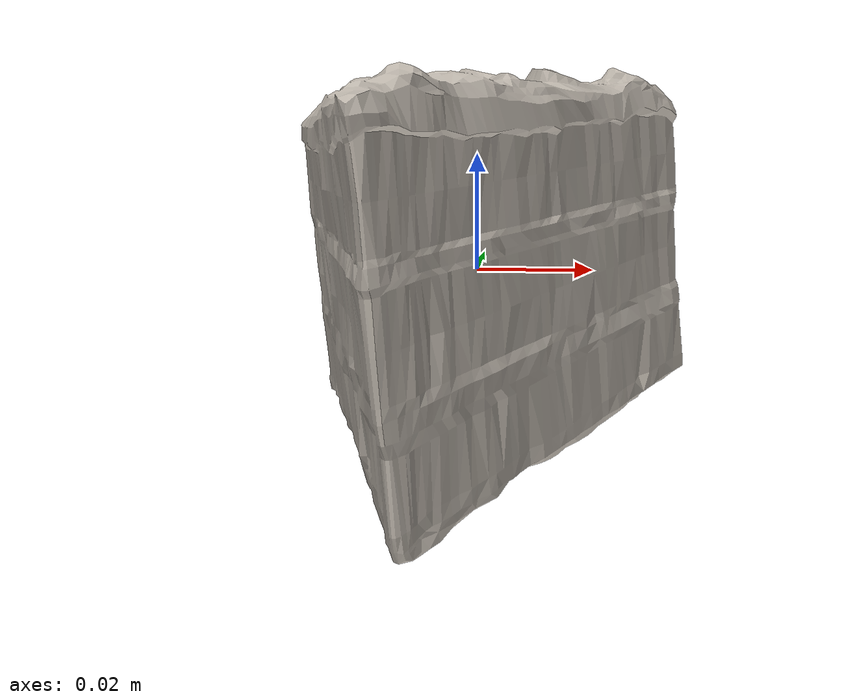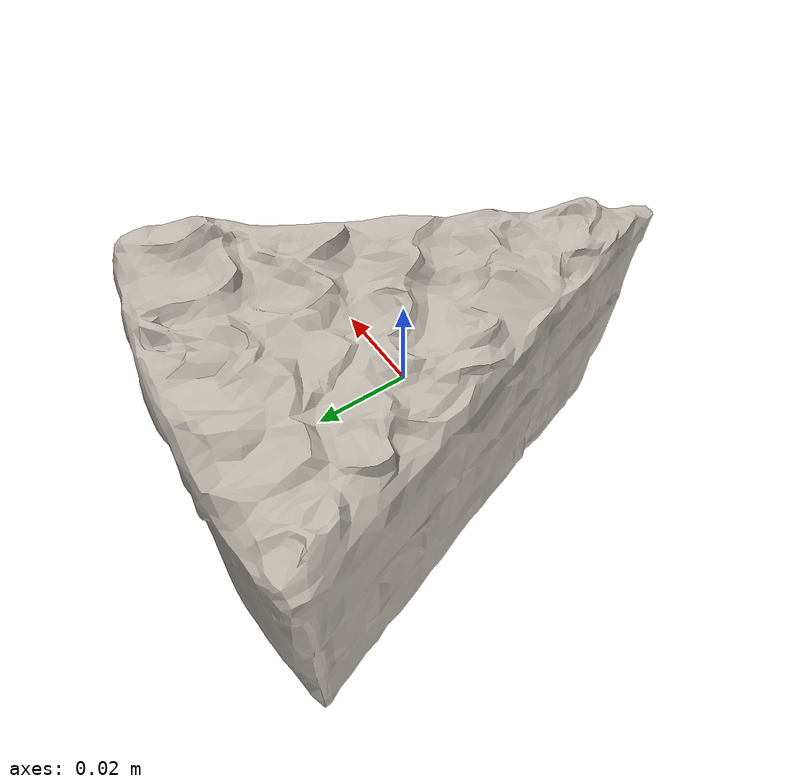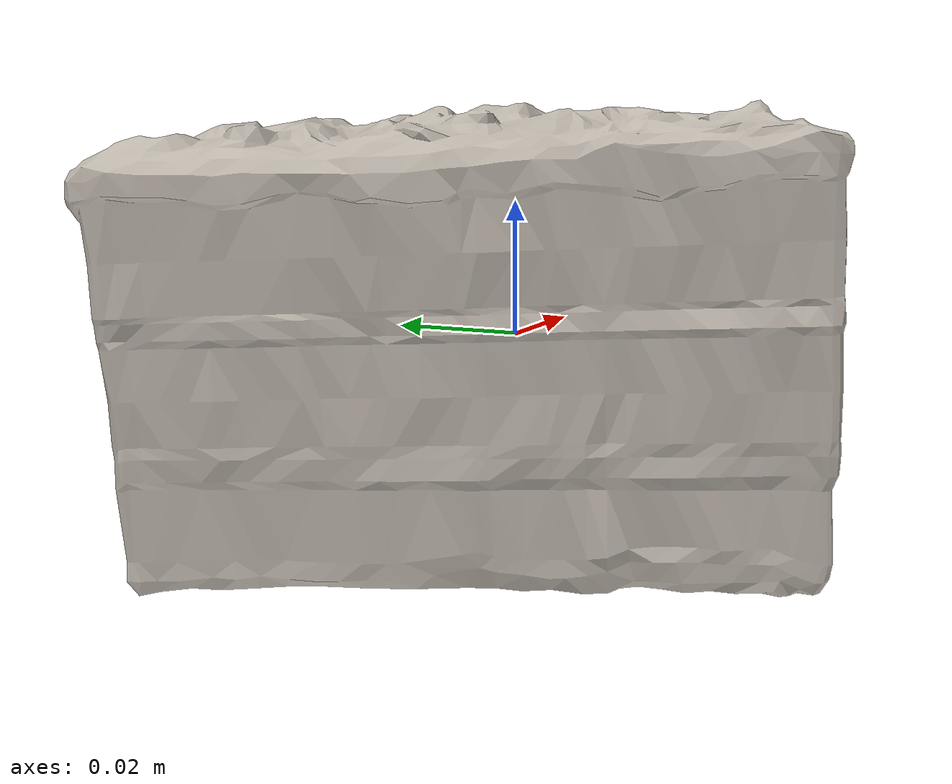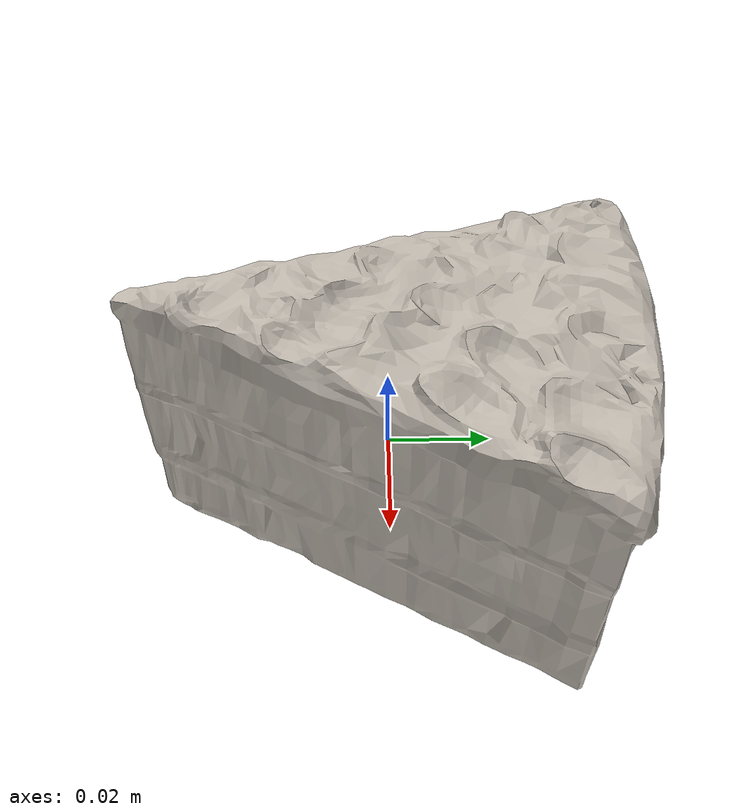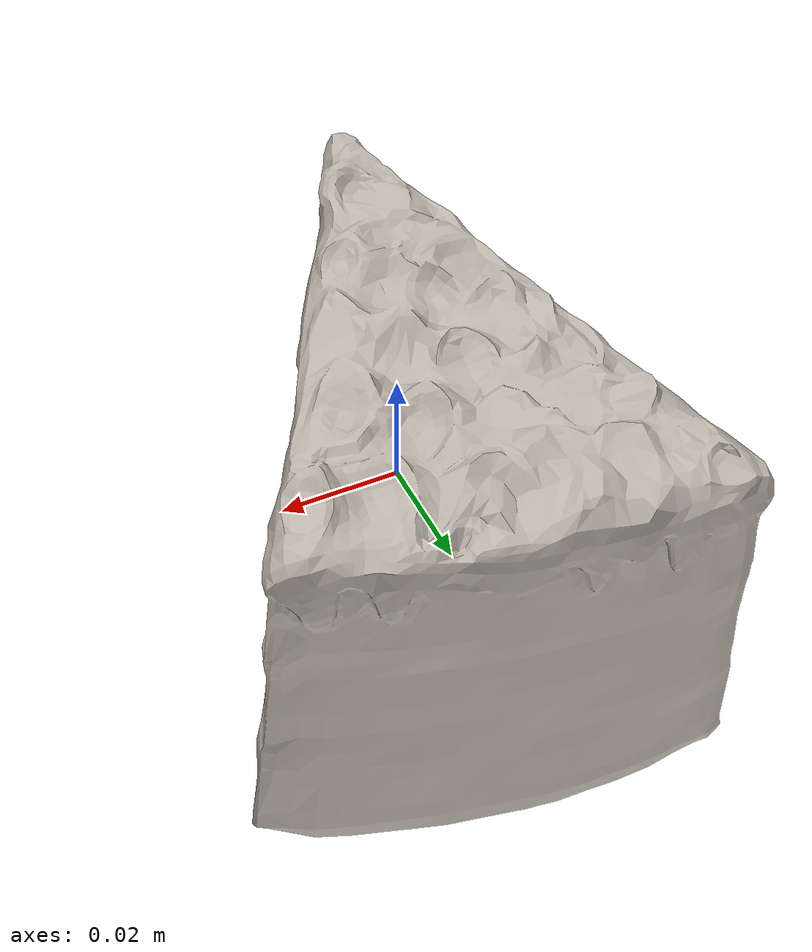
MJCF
<mujoco model="cake_30">
  <asset>
    <mesh file="visual/model_normalized_0.obj" name="model_normalized_0_vis" scale="0.09999999999999994 0.09999999999999994 0.09999999999999994" refquat="0.9999999999999999 0.0 0.0 0.0"/>
    <mesh file="collision/model_normalized_collision_22.obj" name="model_normalized_collision_22._coll" scale="0.09999999999999994 0.09999999999999994 0.09999999999999994" refquat="0.9999999999999999 0.0 0.0 0.0"/>
    <mesh file="collision/model_normalized_collision_23.obj" name="model_normalized_collision_23._coll" scale="0.09999999999999994 0.09999999999999994 0.09999999999999994" refquat="0.9999999999999999 0.0 0.0 0.0"/>
    <mesh file="collision/model_normalized_collision_21.obj" name="model_normalized_collision_21._coll" scale="0.09999999999999994 0.09999999999999994 0.09999999999999994" refquat="0.9999999999999999 0.0 0.0 0.0"/>
    <mesh file="collision/model_normalized_collision_20.obj" name="model_normalized_collision_20._coll" scale="0.09999999999999994 0.09999999999999994 0.09999999999999994" refquat="0.9999999999999999 0.0 0.0 0.0"/>
    <mesh file="collision/model_normalized_collision_24.obj" name="model_normalized_collision_24._coll" scale="0.09999999999999994 0.09999999999999994 0.09999999999999994" refquat="0.9999999999999999 0.0 0.0 0.0"/>
    <mesh file="collision/model_normalized_collision_30.obj" name="model_normalized_collision_30._coll" scale="0.09999999999999994 0.09999999999999994 0.09999999999999994" refquat="0.9999999999999999 0.0 0.0 0.0"/>
    <mesh file="collision/model_normalized_collision_18.obj" name="model_normalized_collision_18._coll" scale="0.09999999999999994 0.09999999999999994 0.09999999999999994" refquat="0.9999999999999999 0.0 0.0 0.0"/>
    <mesh file="collision/model_normalized_collision_19.obj" name="model_normalized_collision_19._coll" scale="0.09999999999999994 0.09999999999999994 0.09999999999999994" refquat="0.9999999999999999 0.0 0.0 0.0"/>
    <mesh file="collision/model_normalized_collision_31.obj" name="model_normalized_collision_31._coll" scale="0.09999999999999994 0.09999999999999994 0.09999999999999994" refquat="0.9999999999999999 0.0 0.0 0.0"/>
    <mesh file="collision/model_normalized_collision_25.obj" name="model_normalized_collision_25._coll" scale="0.09999999999999994 0.09999999999999994 0.09999999999999994" refquat="0.9999999999999999 0.0 0.0 0.0"/>
    <mesh file="collision/model_normalized_collision_27.obj" name="model_normalized_collision_27._coll" scale="0.09999999999999994 0.09999999999999994 0.09999999999999994" refquat="0.9999999999999999 0.0 0.0 0.0"/>
    <mesh file="collision/model_normalized_collision_26.obj" name="model_normalized_collision_26._coll" scale="0.09999999999999994 0.09999999999999994 0.09999999999999994" refquat="0.9999999999999999 0.0 0.0 0.0"/>
    <mesh file="collision/model_normalized_collision_9.obj" name="model_normalized_collision_9._coll" scale="0.09999999999999994 0.09999999999999994 0.09999999999999994" refquat="0.9999999999999999 0.0 0.0 0.0"/>
    <mesh file="collision/model_normalized_collision_8.obj" name="model_normalized_collision_8._coll" scale="0.09999999999999994 0.09999999999999994 0.09999999999999994" refquat="0.9999999999999999 0.0 0.0 0.0"/>
    <mesh file="collision/model_normalized_collision_6.obj" name="model_normalized_collision_6._coll" scale="0.09999999999999994 0.09999999999999994 0.09999999999999994" refquat="0.9999999999999999 0.0 0.0 0.0"/>
    <mesh file="collision/model_normalized_collision_7.obj" name="model_normalized_collision_7._coll" scale="0.09999999999999994 0.09999999999999994 0.09999999999999994" refquat="0.9999999999999999 0.0 0.0 0.0"/>
    <mesh file="collision/model_normalized_collision_5.obj" name="model_normalized_collision_5._coll" scale="0.09999999999999994 0.09999999999999994 0.09999999999999994" refquat="0.9999999999999999 0.0 0.0 0.0"/>
    <mesh file="collision/model_normalized_collision_4.obj" name="model_normalized_collision_4._coll" scale="0.09999999999999994 0.09999999999999994 0.09999999999999994" refquat="0.9999999999999999 0.0 0.0 0.0"/>
    <mesh file="collision/model_normalized_collision_0.obj" name="model_normalized_collision_0._coll" scale="0.09999999999999994 0.09999999999999994 0.09999999999999994" refquat="0.9999999999999999 0.0 0.0 0.0"/>
    <mesh file="collision/model_normalized_collision_1.obj" name="model_normalized_collision_1._coll" scale="0.09999999999999994 0.09999999999999994 0.09999999999999994" refquat="0.9999999999999999 0.0 0.0 0.0"/>
    <mesh file="collision/model_normalized_collision_3.obj" name="model_normalized_collision_3._coll" scale="0.09999999999999994 0.09999999999999994 0.09999999999999994" refquat="0.9999999999999999 0.0 0.0 0.0"/>
    <mesh file="collision/model_normalized_collision_2.obj" name="model_normalized_collision_2._coll" scale="0.09999999999999994 0.09999999999999994 0.09999999999999994" refquat="0.9999999999999999 0.0 0.0 0.0"/>
    <mesh file="collision/model_normalized_collision_17.obj" name="model_normalized_collision_17._coll" scale="0.09999999999999994 0.09999999999999994 0.09999999999999994" refquat="0.9999999999999999 0.0 0.0 0.0"/>
    <mesh file="collision/model_normalized_collision_16.obj" name="model_normalized_collision_16._coll" scale="0.09999999999999994 0.09999999999999994 0.09999999999999994" refquat="0.9999999999999999 0.0 0.0 0.0"/>
    <mesh file="collision/model_normalized_collision_28.obj" name="model_normalized_collision_28._coll" scale="0.09999999999999994 0.09999999999999994 0.09999999999999994" refquat="0.9999999999999999 0.0 0.0 0.0"/>
    <mesh file="collision/model_normalized_collision_14.obj" name="model_normalized_collision_14._coll" scale="0.09999999999999994 0.09999999999999994 0.09999999999999994" refquat="0.9999999999999999 0.0 0.0 0.0"/>
    <mesh file="collision/model_normalized_collision_15.obj" name="model_normalized_collision_15._coll" scale="0.09999999999999994 0.09999999999999994 0.09999999999999994" refquat="0.9999999999999999 0.0 0.0 0.0"/>
    <mesh file="collision/model_normalized_collision_29.obj" name="model_normalized_collision_29._coll" scale="0.09999999999999994 0.09999999999999994 0.09999999999999994" refquat="0.9999999999999999 0.0 0.0 0.0"/>
    <mesh file="collision/model_normalized_collision_11.obj" name="model_normalized_collision_11._coll" scale="0.09999999999999994 0.09999999999999994 0.09999999999999994" refquat="0.9999999999999999 0.0 0.0 0.0"/>
    <mesh file="collision/model_normalized_collision_10.obj" name="model_normalized_collision_10._coll" scale="0.09999999999999994 0.09999999999999994 0.09999999999999994" refquat="0.9999999999999999 0.0 0.0 0.0"/>
    <mesh file="collision/model_normalized_collision_12.obj" name="model_normalized_collision_12._coll" scale="0.09999999999999994 0.09999999999999994 0.09999999999999994" refquat="0.9999999999999999 0.0 0.0 0.0"/>
    <mesh file="collision/model_normalized_collision_13.obj" name="model_normalized_collision_13._coll" scale="0.09999999999999994 0.09999999999999994 0.09999999999999994" refquat="0.9999999999999999 0.0 0.0 0.0"/>
    <texture type="2d" name="image0" file="visual/image0.png"/>
    <material name="material.117" texture="image0" specular="0.5" shininess="0.359999993"/>
  </asset>
  <worldbody>
  <body>
      <body name="object">
        <geom solimp="0.998 0.998 0.001" solref="0.001 1" density="100" friction="0.95 0.3 0.1" type="mesh" mesh="model_normalized_0_vis" conaffinity="0" contype="0" group="1" material="material.117"/>
        <geom solimp="0.998 0.998 0.001" solref="0.001 1" density="100" friction="0.95 0.3 0.1" type="mesh" mesh="model_normalized_collision_22._coll" group="0" rgba="0.8 0.8 0.8 0.0"/>
        <geom solimp="0.998 0.998 0.001" solref="0.001 1" density="100" friction="0.95 0.3 0.1" type="mesh" mesh="model_normalized_collision_23._coll" group="0" rgba="0.8 0.8 0.8 0.0"/>
        <geom solimp="0.998 0.998 0.001" solref="0.001 1" density="100" friction="0.95 0.3 0.1" type="mesh" mesh="model_normalized_collision_21._coll" group="0" rgba="0.8 0.8 0.8 0.0"/>
        <geom solimp="0.998 0.998 0.001" solref="0.001 1" density="100" friction="0.95 0.3 0.1" type="mesh" mesh="model_normalized_collision_20._coll" group="0" rgba="0.8 0.8 0.8 0.0"/>
        <geom solimp="0.998 0.998 0.001" solref="0.001 1" density="100" friction="0.95 0.3 0.1" type="mesh" mesh="model_normalized_collision_24._coll" group="0" rgba="0.8 0.8 0.8 0.0"/>
        <geom solimp="0.998 0.998 0.001" solref="0.001 1" density="100" friction="0.95 0.3 0.1" type="mesh" mesh="model_normalized_collision_30._coll" group="0" rgba="0.8 0.8 0.8 0.0"/>
        <geom solimp="0.998 0.998 0.001" solref="0.001 1" density="100" friction="0.95 0.3 0.1" type="mesh" mesh="model_normalized_collision_18._coll" group="0" rgba="0.8 0.8 0.8 0.0"/>
        <geom solimp="0.998 0.998 0.001" solref="0.001 1" density="100" friction="0.95 0.3 0.1" type="mesh" mesh="model_normalized_collision_19._coll" group="0" rgba="0.8 0.8 0.8 0.0"/>
        <geom solimp="0.998 0.998 0.001" solref="0.001 1" density="100" friction="0.95 0.3 0.1" type="mesh" mesh="model_normalized_collision_31._coll" group="0" rgba="0.8 0.8 0.8 0.0"/>
        <geom solimp="0.998 0.998 0.001" solref="0.001 1" density="100" friction="0.95 0.3 0.1" type="mesh" mesh="model_normalized_collision_25._coll" group="0" rgba="0.8 0.8 0.8 0.0"/>
        <geom solimp="0.998 0.998 0.001" solref="0.001 1" density="100" friction="0.95 0.3 0.1" type="mesh" mesh="model_normalized_collision_27._coll" group="0" rgba="0.8 0.8 0.8 0.0"/>
        <geom solimp="0.998 0.998 0.001" solref="0.001 1" density="100" friction="0.95 0.3 0.1" type="mesh" mesh="model_normalized_collision_26._coll" group="0" rgba="0.8 0.8 0.8 0.0"/>
        <geom solimp="0.998 0.998 0.001" solref="0.001 1" density="100" friction="0.95 0.3 0.1" type="mesh" mesh="model_normalized_collision_9._coll" group="0" rgba="0.8 0.8 0.8 0.0"/>
        <geom solimp="0.998 0.998 0.001" solref="0.001 1" density="100" friction="0.95 0.3 0.1" type="mesh" mesh="model_normalized_collision_8._coll" group="0" rgba="0.8 0.8 0.8 0.0"/>
        <geom solimp="0.998 0.998 0.001" solref="0.001 1" density="100" friction="0.95 0.3 0.1" type="mesh" mesh="model_normalized_collision_6._coll" group="0" rgba="0.8 0.8 0.8 0.0"/>
        <geom solimp="0.998 0.998 0.001" solref="0.001 1" density="100" friction="0.95 0.3 0.1" type="mesh" mesh="model_normalized_collision_7._coll" group="0" rgba="0.8 0.8 0.8 0.0"/>
        <geom solimp="0.998 0.998 0.001" solref="0.001 1" density="100" friction="0.95 0.3 0.1" type="mesh" mesh="model_normalized_collision_5._coll" group="0" rgba="0.8 0.8 0.8 0.0"/>
        <geom solimp="0.998 0.998 0.001" solref="0.001 1" density="100" friction="0.95 0.3 0.1" type="mesh" mesh="model_normalized_collision_4._coll" group="0" rgba="0.8 0.8 0.8 0.0"/>
        <geom solimp="0.998 0.998 0.001" solref="0.001 1" density="100" friction="0.95 0.3 0.1" type="mesh" mesh="model_normalized_collision_0._coll" group="0" rgba="0.8 0.8 0.8 0.0"/>
        <geom solimp="0.998 0.998 0.001" solref="0.001 1" density="100" friction="0.95 0.3 0.1" type="mesh" mesh="model_normalized_collision_1._coll" group="0" rgba="0.8 0.8 0.8 0.0"/>
        <geom solimp="0.998 0.998 0.001" solref="0.001 1" density="100" friction="0.95 0.3 0.1" type="mesh" mesh="model_normalized_collision_3._coll" group="0" rgba="0.8 0.8 0.8 0.0"/>
        <geom solimp="0.998 0.998 0.001" solref="0.001 1" density="100" friction="0.95 0.3 0.1" type="mesh" mesh="model_normalized_collision_2._coll" group="0" rgba="0.8 0.8 0.8 0.0"/>
        <geom solimp="0.998 0.998 0.001" solref="0.001 1" density="100" friction="0.95 0.3 0.1" type="mesh" mesh="model_normalized_collision_17._coll" group="0" rgba="0.8 0.8 0.8 0.0"/>
        <geom solimp="0.998 0.998 0.001" solref="0.001 1" density="100" friction="0.95 0.3 0.1" type="mesh" mesh="model_normalized_collision_16._coll" group="0" rgba="0.8 0.8 0.8 0.0"/>
        <geom solimp="0.998 0.998 0.001" solref="0.001 1" density="100" friction="0.95 0.3 0.1" type="mesh" mesh="model_normalized_collision_28._coll" group="0" rgba="0.8 0.8 0.8 0.0"/>
        <geom solimp="0.998 0.998 0.001" solref="0.001 1" density="100" friction="0.95 0.3 0.1" type="mesh" mesh="model_normalized_collision_14._coll" group="0" rgba="0.8 0.8 0.8 0.0"/>
        <geom solimp="0.998 0.998 0.001" solref="0.001 1" density="100" friction="0.95 0.3 0.1" type="mesh" mesh="model_normalized_collision_15._coll" group="0" rgba="0.8 0.8 0.8 0.0"/>
        <geom solimp="0.998 0.998 0.001" solref="0.001 1" density="100" friction="0.95 0.3 0.1" type="mesh" mesh="model_normalized_collision_29._coll" group="0" rgba="0.8 0.8 0.8 0.0"/>
        <geom solimp="0.998 0.998 0.001" solref="0.001 1" density="100" friction="0.95 0.3 0.1" type="mesh" mesh="model_normalized_collision_11._coll" group="0" rgba="0.8 0.8 0.8 0.0"/>
        <geom solimp="0.998 0.998 0.001" solref="0.001 1" density="100" friction="0.95 0.3 0.1" type="mesh" mesh="model_normalized_collision_10._coll" group="0" rgba="0.8 0.8 0.8 0.0"/>
        <geom solimp="0.998 0.998 0.001" solref="0.001 1" density="100" friction="0.95 0.3 0.1" type="mesh" mesh="model_normalized_collision_12._coll" group="0" rgba="0.8 0.8 0.8 0.0"/>
        <geom solimp="0.998 0.998 0.001" solref="0.001 1" density="100" friction="0.95 0.3 0.1" type="mesh" mesh="model_normalized_collision_13._coll" group="0" rgba="0.8 0.8 0.8 0.0"/>
      </body>
      <site rgba="0 0 0 0" size="0.005" pos="0.00015208399999999946 0.00017510350000000109 -0.03548082599999998" name="bottom_site"/>
      <site rgba="0 0 0 0" size="0.005" pos="0.00015208399999999946 0.00017510350000000109 0.03512447999999998" name="top_site"/>
      <site rgba="0 0 0 0" size="0.005" pos="0.041435598999999976 0.04986953099999997 -0.00017817299999999802" name="horizontal_radius_site"/>
    </body>
    </worldbody>
</mujoco>
